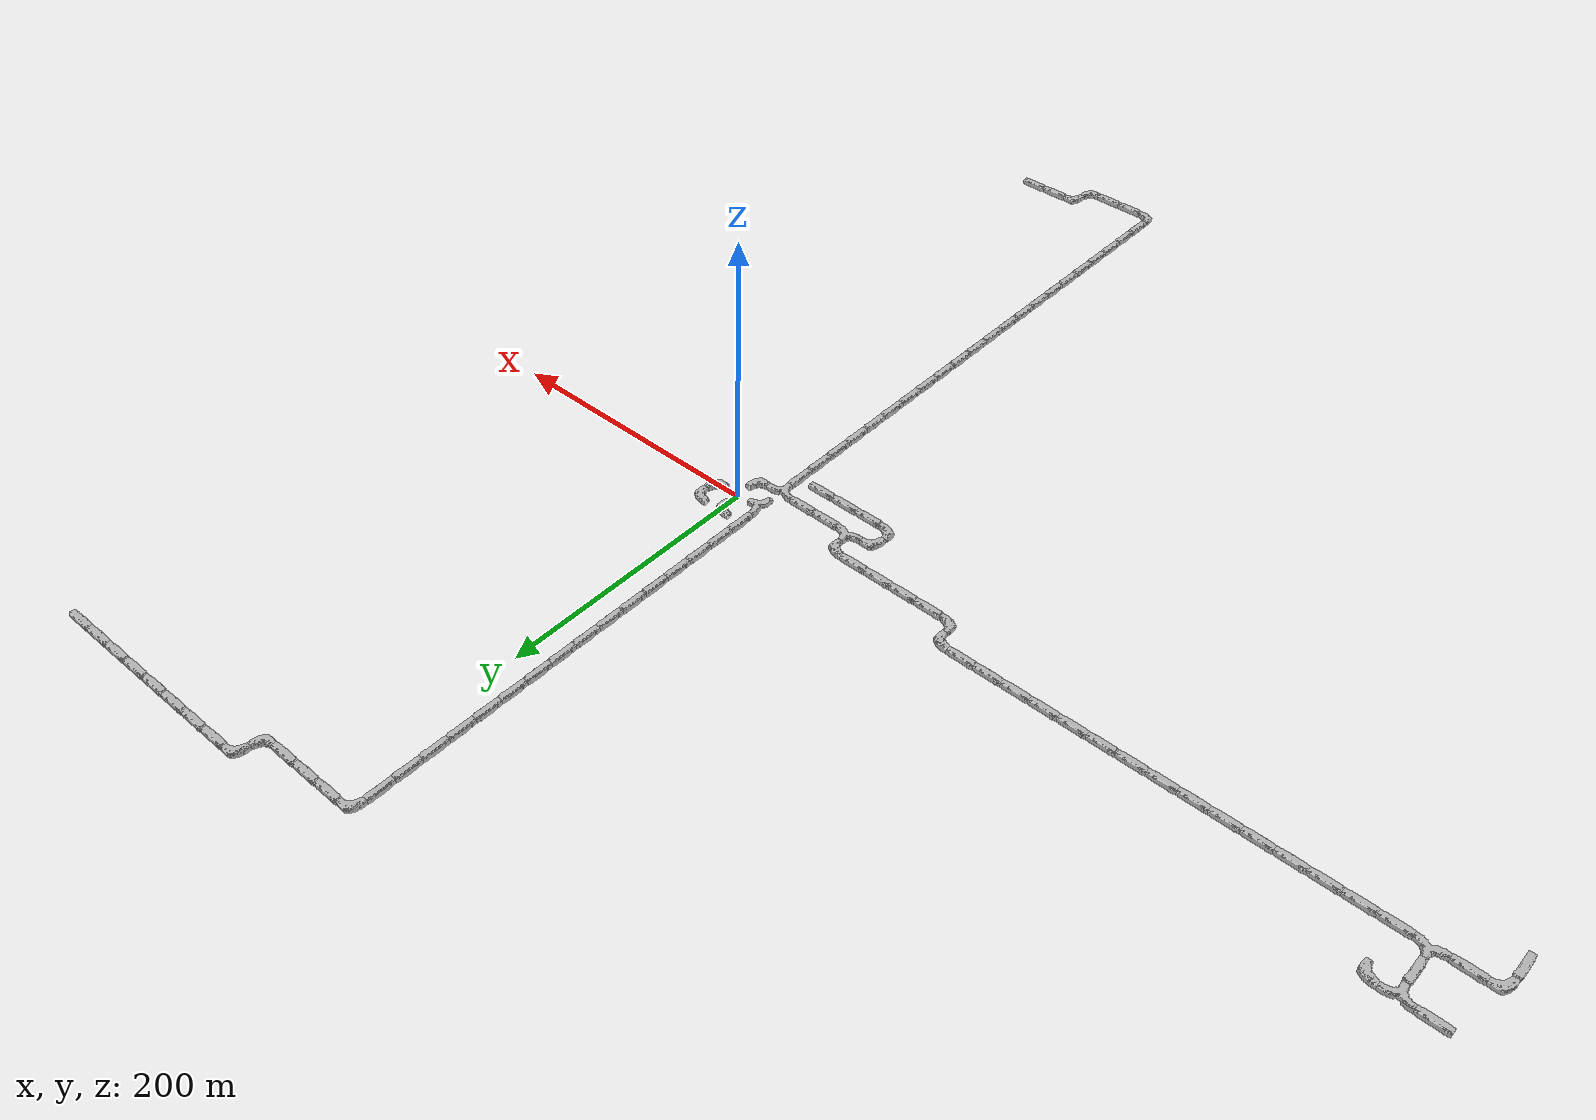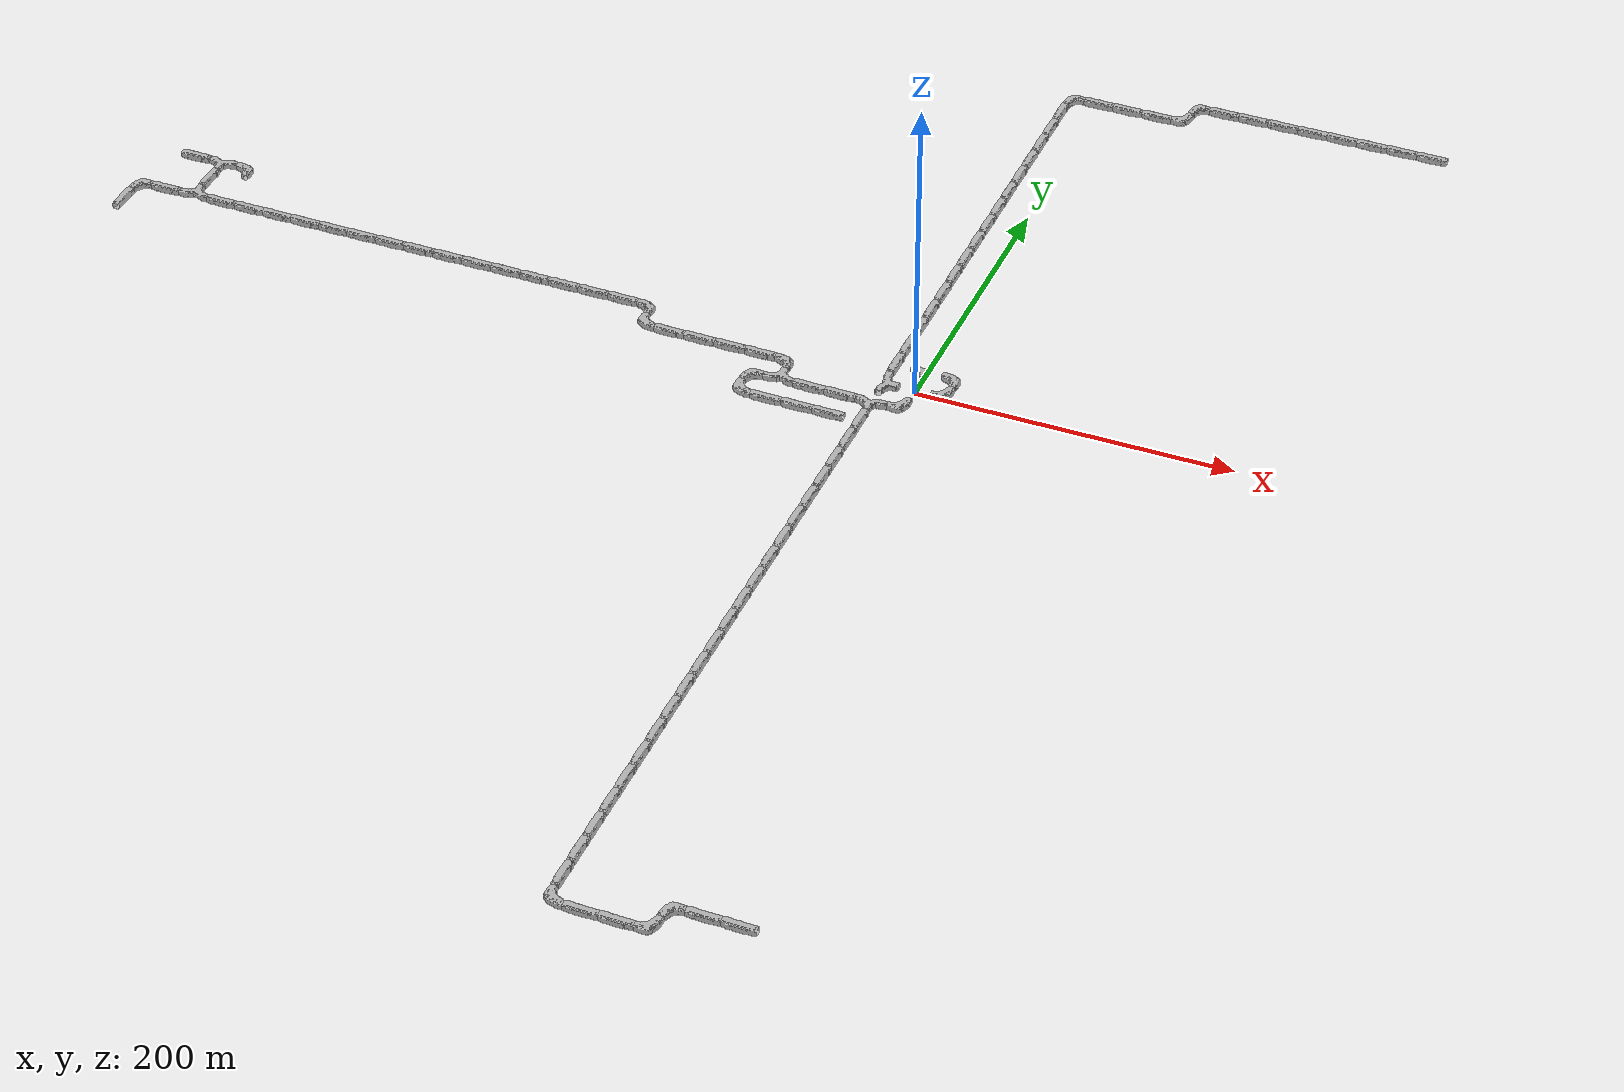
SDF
<sdf version="1.6">
 <world name="cave_2000_16">
  <include>
   <static>true</static>
   <name>cave_1_0</name>
   <pose>20 0 0 0 0 1.5707963267948966</pose>
   <uri>model://cave_L_20m</uri>
  </include>
  <include>
   <static>true</static>
   <name>cave_1_1</name>
   <pose>20 20 0 0 0 3.141592653589793</pose>
   <uri>model://cave_L_20m</uri>
  </include>
  <include>
   <static>true</static>
   <name>cave_0_-1</name>
   <pose>0 -20 0 0 0 1.5707963267948966</pose>
   <uri>model://cave_L_20m</uri>
  </include>
  <include>
   <static>true</static>
   <name>cave_-1_-1</name>
   <pose>-20 -20 0 0 0 3.141592653589793</pose>
   <uri>model://cave_3way_20m</uri>
  </include>
  <include>
   <static>true</static>
   <name>cave_-1_-2</name>
   <pose>-20 -40 0 0 0 0.0</pose>
   <uri>model://cave_straight_20m</uri>
  </include>
  <include>
   <static>true</static>
   <name>cave_-1_-3</name>
   <pose>-20 -60 0 0 0 0.0</pose>
   <uri>model://cave_straight_20m</uri>
  </include>
  <include>
   <static>true</static>
   <name>cave_-1_-4</name>
   <pose>-20 -80 0 0 0 0.0</pose>
   <uri>model://cave_straight_20m</uri>
  </include>
  <include>
   <static>true</static>
   <name>cave_-1_-5</name>
   <pose>-20 -100 0 0 0 0.0</pose>
   <uri>model://cave_straight_20m</uri>
  </include>
  <include>
   <static>true</static>
   <name>cave_-1_-6</name>
   <pose>-20 -120 0 0 0 0.0</pose>
   <uri>model://cave_straight_20m</uri>
  </include>
  <include>
   <static>true</static>
   <name>cave_-1_-7</name>
   <pose>-20 -140 0 0 0 0.0</pose>
   <uri>model://cave_straight_20m</uri>
  </include>
  <include>
   <static>true</static>
   <name>cave_-1_-8</name>
   <pose>-20 -160 0 0 0 0.0</pose>
   <uri>model://cave_straight_20m</uri>
  </include>
  <include>
   <static>true</static>
   <name>cave_-1_-9</name>
   <pose>-20 -180 0 0 0 0.0</pose>
   <uri>model://cave_straight_20m</uri>
  </include>
  <include>
   <static>true</static>
   <name>cave_-1_-10</name>
   <pose>-20 -200 0 0 0 0.0</pose>
   <uri>model://cave_straight_20m</uri>
  </include>
  <include>
   <static>true</static>
   <name>cave_-1_-11</name>
   <pose>-20 -220 0 0 0 0.0</pose>
   <uri>model://cave_straight_20m</uri>
  </include>
  <include>
   <static>true</static>
   <name>cave_-1_-12</name>
   <pose>-20 -240 0 0 0 0.0</pose>
   <uri>model://cave_straight_20m</uri>
  </include>
  <include>
   <static>true</static>
   <name>cave_-1_-13</name>
   <pose>-20 -260 0 0 0 0.0</pose>
   <uri>model://cave_straight_20m</uri>
  </include>
  <include>
   <static>true</static>
   <name>cave_-1_-14</name>
   <pose>-20 -280 0 0 0 0.0</pose>
   <uri>model://cave_straight_20m</uri>
  </include>
  <include>
   <static>true</static>
   <name>cave_-1_-15</name>
   <pose>-20 -300 0 0 0 0.0</pose>
   <uri>model://cave_straight_20m</uri>
  </include>
  <include>
   <static>true</static>
   <name>cave_-1_-16</name>
   <pose>-20 -320 0 0 0 0.0</pose>
   <uri>model://cave_straight_20m</uri>
  </include>
  <include>
   <static>true</static>
   <name>cave_-1_-17</name>
   <pose>-20 -340 0 0 0 0.0</pose>
   <uri>model://cave_straight_20m</uri>
  </include>
  <include>
   <static>true</static>
   <name>cave_-1_-18</name>
   <pose>-20 -360 0 0 0 0.0</pose>
   <uri>model://cave_straight_20m</uri>
  </include>
  <include>
   <static>true</static>
   <name>cave_-1_-19</name>
   <pose>-20 -380 0 0 0 0.0</pose>
   <uri>model://cave_straight_20m</uri>
  </include>
  <include>
   <static>true</static>
   <name>cave_-1_-20</name>
   <pose>-20 -400 0 0 0 0.0</pose>
   <uri>model://cave_straight_20m</uri>
  </include>
  <include>
   <static>true</static>
   <name>cave_-1_-21</name>
   <pose>-20 -420 0 0 0 0.0</pose>
   <uri>model://cave_straight_20m</uri>
  </include>
  <include>
   <static>true</static>
   <name>cave_-1_-22</name>
   <pose>-20 -440 0 0 0 0.0</pose>
   <uri>model://cave_straight_20m</uri>
  </include>
  <include>
   <static>true</static>
   <name>cave_-1_-23</name>
   <pose>-20 -460 0 0 0 0.0</pose>
   <uri>model://cave_straight_20m</uri>
  </include>
  <include>
   <static>true</static>
   <name>cave_-1_-24</name>
   <pose>-20 -480 0 0 0 0.0</pose>
   <uri>model://cave_L_20m</uri>
  </include>
  <include>
   <static>true</static>
   <name>cave_0_-24</name>
   <pose>0 -480 0 0 0 1.5707963267948966</pose>
   <uri>model://cave_straight_20m</uri>
  </include>
  <include>
   <static>true</static>
   <name>cave_1_-24</name>
   <pose>20 -480 0 0 0 1.5707963267948966</pose>
   <uri>model://cave_straight_20m</uri>
  </include>
  <include>
   <static>true</static>
   <name>cave_2_-24</name>
   <pose>40 -480 0 0 0 1.5707963267948966</pose>
   <uri>model://cave_L_20m</uri>
  </include>
  <include>
   <static>true</static>
   <name>cave_2_-23</name>
   <pose>40 -460 0 0 0 -1.5707963267948966</pose>
   <uri>model://cave_L_20m</uri>
  </include>
  <include>
   <static>true</static>
   <name>cave_3_-23</name>
   <pose>60 -460 0 0 0 1.5707963267948966</pose>
   <uri>model://cave_straight_20m</uri>
  </include>
  <include>
   <static>true</static>
   <name>cave_4_-23</name>
   <pose>80 -460 0 0 0 1.5707963267948966</pose>
   <uri>model://cave_straight_20m</uri>
  </include>
  <include>
   <static>true</static>
   <name>cave_-2_-1</name>
   <pose>-40 -20 0 0 0 1.5707963267948966</pose>
   <uri>model://cave_straight_20m</uri>
  </include>
  <include>
   <static>true</static>
   <name>cave_-3_-1</name>
   <pose>-60 -20 0 0 0 1.5707963267948966</pose>
   <uri>model://cave_straight_20m</uri>
  </include>
  <include>
   <static>true</static>
   <name>cave_-4_-1</name>
   <pose>-80 -20 0 0 0 0.0</pose>
   <uri>model://cave_3way_20m</uri>
  </include>
  <include>
   <static>true</static>
   <name>cave_-5_-1</name>
   <pose>-100 -20 0 0 0 -1.5707963267948966</pose>
   <uri>model://cave_L_20m</uri>
  </include>
  <include>
   <static>true</static>
   <name>cave_-5_-2</name>
   <pose>-100 -40 0 0 0 0.0</pose>
   <uri>model://cave_L_20m</uri>
  </include>
  <include>
   <static>true</static>
   <name>cave_-4_-2</name>
   <pose>-80 -40 0 0 0 1.5707963267948966</pose>
   <uri>model://cave_straight_20m</uri>
  </include>
  <include>
   <static>true</static>
   <name>cave_-3_-2</name>
   <pose>-60 -40 0 0 0 1.5707963267948966</pose>
   <uri>model://cave_straight_20m</uri>
  </include>
  <include>
   <static>true</static>
   <name>cave_-2_-2</name>
   <pose>-40 -40 0 0 0 1.5707963267948966</pose>
   <uri>model://cave_straight_20m</uri>
  </include>
  <include>
   <static>true</static>
   <name>cave_-4_0</name>
   <pose>-80 0 0 0 0 3.141592653589793</pose>
   <uri>model://cave_L_20m</uri>
  </include>
  <include>
   <static>true</static>
   <name>cave_-5_0</name>
   <pose>-100 0 0 0 0 1.5707963267948966</pose>
   <uri>model://cave_straight_20m</uri>
  </include>
  <include>
   <static>true</static>
   <name>cave_-6_0</name>
   <pose>-120 0 0 0 0 1.5707963267948966</pose>
   <uri>model://cave_straight_20m</uri>
  </include>
  <include>
   <static>true</static>
   <name>cave_-7_0</name>
   <pose>-140 0 0 0 0 1.5707963267948966</pose>
   <uri>model://cave_straight_20m</uri>
  </include>
  <include>
   <static>true</static>
   <name>cave_-8_0</name>
   <pose>-160 0 0 0 0 1.5707963267948966</pose>
   <uri>model://cave_straight_20m</uri>
  </include>
  <include>
   <static>true</static>
   <name>cave_-9_0</name>
   <pose>-180 0 0 0 0 0.0</pose>
   <uri>model://cave_L_20m</uri>
  </include>
  <include>
   <static>true</static>
   <name>cave_-9_1</name>
   <pose>-180 20 0 0 0 3.141592653589793</pose>
   <uri>model://cave_L_20m</uri>
  </include>
  <include>
   <static>true</static>
   <name>cave_-10_1</name>
   <pose>-200 20 0 0 0 1.5707963267948966</pose>
   <uri>model://cave_straight_20m</uri>
  </include>
  <include>
   <static>true</static>
   <name>cave_-11_1</name>
   <pose>-220 20 0 0 0 1.5707963267948966</pose>
   <uri>model://cave_straight_20m</uri>
  </include>
  <include>
   <static>true</static>
   <name>cave_-12_1</name>
   <pose>-240 20 0 0 0 1.5707963267948966</pose>
   <uri>model://cave_straight_20m</uri>
  </include>
  <include>
   <static>true</static>
   <name>cave_-13_1</name>
   <pose>-260 20 0 0 0 1.5707963267948966</pose>
   <uri>model://cave_straight_20m</uri>
  </include>
  <include>
   <static>true</static>
   <name>cave_-14_1</name>
   <pose>-280 20 0 0 0 1.5707963267948966</pose>
   <uri>model://cave_straight_20m</uri>
  </include>
  <include>
   <static>true</static>
   <name>cave_-15_1</name>
   <pose>-300 20 0 0 0 1.5707963267948966</pose>
   <uri>model://cave_straight_20m</uri>
  </include>
  <include>
   <static>true</static>
   <name>cave_-16_1</name>
   <pose>-320 20 0 0 0 1.5707963267948966</pose>
   <uri>model://cave_straight_20m</uri>
  </include>
  <include>
   <static>true</static>
   <name>cave_-17_1</name>
   <pose>-340 20 0 0 0 1.5707963267948966</pose>
   <uri>model://cave_straight_20m</uri>
  </include>
  <include>
   <static>true</static>
   <name>cave_-18_1</name>
   <pose>-360 20 0 0 0 1.5707963267948966</pose>
   <uri>model://cave_straight_20m</uri>
  </include>
  <include>
   <static>true</static>
   <name>cave_-19_1</name>
   <pose>-380 20 0 0 0 1.5707963267948966</pose>
   <uri>model://cave_straight_20m</uri>
  </include>
  <include>
   <static>true</static>
   <name>cave_-20_1</name>
   <pose>-400 20 0 0 0 1.5707963267948966</pose>
   <uri>model://cave_straight_20m</uri>
  </include>
  <include>
   <static>true</static>
   <name>cave_-21_1</name>
   <pose>-420 20 0 0 0 1.5707963267948966</pose>
   <uri>model://cave_straight_20m</uri>
  </include>
  <include>
   <static>true</static>
   <name>cave_-22_1</name>
   <pose>-440 20 0 0 0 1.5707963267948966</pose>
   <uri>model://cave_straight_20m</uri>
  </include>
  <include>
   <static>true</static>
   <name>cave_-23_1</name>
   <pose>-460 20 0 0 0 1.5707963267948966</pose>
   <uri>model://cave_straight_20m</uri>
  </include>
  <include>
   <static>true</static>
   <name>cave_-24_1</name>
   <pose>-480 20 0 0 0 1.5707963267948966</pose>
   <uri>model://cave_straight_20m</uri>
  </include>
  <include>
   <static>true</static>
   <name>cave_-25_1</name>
   <pose>-500 20 0 0 0 0.0</pose>
   <uri>model://cave_3way_20m</uri>
  </include>
  <include>
   <static>true</static>
   <name>cave_-26_1</name>
   <pose>-520 20 0 0 0 1.5707963267948966</pose>
   <uri>model://cave_straight_20m</uri>
  </include>
  <include>
   <static>true</static>
   <name>cave_-27_1</name>
   <pose>-540 20 0 0 0 -1.5707963267948966</pose>
   <uri>model://cave_L_20m</uri>
  </include>
  <include>
   <static>true</static>
   <name>cave_-27_0</name>
   <pose>-540 0 0 0 0 0.0</pose>
   <uri>model://cave_straight_20m</uri>
  </include>
  <include>
   <static>true</static>
   <name>cave_-25_2</name>
   <pose>-500 40 0 0 0 0.0</pose>
   <uri>model://cave_straight_20m</uri>
  </include>
  <include>
   <static>true</static>
   <name>cave_-25_3</name>
   <pose>-500 60 0 0 0 3.141592653589793</pose>
   <uri>model://cave_3way_20m</uri>
  </include>
  <include>
   <static>true</static>
   <name>cave_-24_3</name>
   <pose>-480 60 0 0 0 3.141592653589793</pose>
   <uri>model://cave_L_20m</uri>
  </include>
  <include>
   <static>true</static>
   <name>cave_-26_3</name>
   <pose>-520 60 0 0 0 1.5707963267948966</pose>
   <uri>model://cave_straight_20m</uri>
  </include>
  <include>
   <static>true</static>
   <name>cave_-1_0</name>
   <pose>-20 0 0 0 0 -1.5707963267948966</pose>
   <uri>model://cave_3way_20m</uri>
  </include>
  <include>
   <static>true</static>
   <name>cave_-1_1</name>
   <pose>-20 20 0 0 0 0.0</pose>
   <uri>model://cave_straight_20m</uri>
  </include>
  <include>
   <static>true</static>
   <name>cave_-1_2</name>
   <pose>-20 40 0 0 0 0.0</pose>
   <uri>model://cave_straight_20m</uri>
  </include>
  <include>
   <static>true</static>
   <name>cave_-1_3</name>
   <pose>-20 60 0 0 0 0.0</pose>
   <uri>model://cave_straight_20m</uri>
  </include>
  <include>
   <static>true</static>
   <name>cave_-1_4</name>
   <pose>-20 80 0 0 0 0.0</pose>
   <uri>model://cave_straight_20m</uri>
  </include>
  <include>
   <static>true</static>
   <name>cave_-1_5</name>
   <pose>-20 100 0 0 0 0.0</pose>
   <uri>model://cave_straight_20m</uri>
  </include>
  <include>
   <static>true</static>
   <name>cave_-1_6</name>
   <pose>-20 120 0 0 0 0.0</pose>
   <uri>model://cave_straight_20m</uri>
  </include>
  <include>
   <static>true</static>
   <name>cave_-1_7</name>
   <pose>-20 140 0 0 0 0.0</pose>
   <uri>model://cave_straight_20m</uri>
  </include>
  <include>
   <static>true</static>
   <name>cave_-1_8</name>
   <pose>-20 160 0 0 0 0.0</pose>
   <uri>model://cave_straight_20m</uri>
  </include>
  <include>
   <static>true</static>
   <name>cave_-1_9</name>
   <pose>-20 180 0 0 0 0.0</pose>
   <uri>model://cave_straight_20m</uri>
  </include>
  <include>
   <static>true</static>
   <name>cave_-1_10</name>
   <pose>-20 200 0 0 0 0.0</pose>
   <uri>model://cave_straight_20m</uri>
  </include>
  <include>
   <static>true</static>
   <name>cave_-1_11</name>
   <pose>-20 220 0 0 0 0.0</pose>
   <uri>model://cave_straight_20m</uri>
  </include>
  <include>
   <static>true</static>
   <name>cave_-1_12</name>
   <pose>-20 240 0 0 0 0.0</pose>
   <uri>model://cave_straight_20m</uri>
  </include>
  <include>
   <static>true</static>
   <name>cave_-1_13</name>
   <pose>-20 260 0 0 0 0.0</pose>
   <uri>model://cave_straight_20m</uri>
  </include>
  <include>
   <static>true</static>
   <name>cave_-1_14</name>
   <pose>-20 280 0 0 0 0.0</pose>
   <uri>model://cave_straight_20m</uri>
  </include>
  <include>
   <static>true</static>
   <name>cave_-1_15</name>
   <pose>-20 300 0 0 0 0.0</pose>
   <uri>model://cave_straight_20m</uri>
  </include>
  <include>
   <static>true</static>
   <name>cave_-1_16</name>
   <pose>-20 320 0 0 0 0.0</pose>
   <uri>model://cave_straight_20m</uri>
  </include>
  <include>
   <static>true</static>
   <name>cave_-1_17</name>
   <pose>-20 340 0 0 0 -1.5707963267948966</pose>
   <uri>model://cave_L_20m</uri>
  </include>
  <include>
   <static>true</static>
   <name>cave_0_17</name>
   <pose>0 340 0 0 0 1.5707963267948966</pose>
   <uri>model://cave_straight_20m</uri>
  </include>
  <include>
   <static>true</static>
   <name>cave_1_17</name>
   <pose>20 340 0 0 0 1.5707963267948966</pose>
   <uri>model://cave_straight_20m</uri>
  </include>
  <include>
   <static>true</static>
   <name>cave_2_17</name>
   <pose>40 340 0 0 0 1.5707963267948966</pose>
   <uri>model://cave_straight_20m</uri>
  </include>
  <include>
   <static>true</static>
   <name>cave_3_17</name>
   <pose>60 340 0 0 0 1.5707963267948966</pose>
   <uri>model://cave_L_20m</uri>
  </include>
  <include>
   <static>true</static>
   <name>cave_3_18</name>
   <pose>60 360 0 0 0 -1.5707963267948966</pose>
   <uri>model://cave_L_20m</uri>
  </include>
  <include>
   <static>true</static>
   <name>cave_4_18</name>
   <pose>80 360 0 0 0 1.5707963267948966</pose>
   <uri>model://cave_straight_20m</uri>
  </include>
  <include>
   <static>true</static>
   <name>cave_5_18</name>
   <pose>100 360 0 0 0 1.5707963267948966</pose>
   <uri>model://cave_straight_20m</uri>
  </include>
  <include>
   <static>true</static>
   <name>cave_6_18</name>
   <pose>120 360 0 0 0 1.5707963267948966</pose>
   <uri>model://cave_straight_20m</uri>
  </include>
  <include>
   <static>true</static>
   <name>cave_7_18</name>
   <pose>140 360 0 0 0 1.5707963267948966</pose>
   <uri>model://cave_straight_20m</uri>
  </include>
  <include>
   <static>true</static>
   <name>cave_8_18</name>
   <pose>160 360 0 0 0 1.5707963267948966</pose>
   <uri>model://cave_straight_20m</uri>
  </include>
  <include>
   <static>true</static>
   <name>cave_9_18</name>
   <pose>180 360 0 0 0 1.5707963267948966</pose>
   <uri>model://cave_straight_20m</uri>
  </include>
  <include>
   <static>true</static>
   <name>cave_10_18</name>
   <pose>200 360 0 0 0 1.5707963267948966</pose>
   <uri>model://cave_straight_20m</uri>
  </include>
  <include>
   <static>true</static>
   <name>cave_11_18</name>
   <pose>220 360 0 0 0 1.5707963267948966</pose>
   <uri>model://cave_straight_20m</uri>
  </include>
  <include>
   <static>true</static>
   <name>cave_0_1</name>
   <pose>0 20 0 0 0 3.141592653589793</pose>
   <uri>model://cave_L_20m</uri>
  </include>
 </world>
</sdf>

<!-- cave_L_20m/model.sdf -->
<sdf version="1.6">
  <model name="cave_L_20m">
    <static>true</static>
    <link name="base">
      <pose>0 0 0 0 0 0</pose>
      <collision name="base_collision">
        <pose>0 0 0 0 0 0</pose>
        <geometry>
          <mesh>
            <uri>model://cave_L_20m/meshes/cave_L_20m.dae</uri>
          </mesh>
        </geometry>
        <surface>
          <contact>
             <collide_bitmask>0xffff</collide_bitmask>
          </contact>
          <friction>
            <ode>
              <mu>100</mu>
              <mu2>50</mu2>
            </ode>
          </friction>
        </surface>
      </collision>
      <visual name="base_visual">
        <pose>0 0 0 0 0 0</pose>
        <cast_shadows>false</cast_shadows>
        <geometry>
          <mesh>
            <uri>model://cave_L_20m/meshes/cave_L_20m.dae</uri>
          </mesh>
        </geometry>
      </visual>
    </link>
  </model>
</sdf>

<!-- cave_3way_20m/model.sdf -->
<sdf version="1.6">
  <model name="cave_3way_20m">
    <static>true</static>
    <link name="base">
      <pose>0 0 0 0 0 0</pose>
      <collision name="base_collision">
        <pose>0 0 0 0 0 0</pose>
        <geometry>
          <mesh>
            <uri>model://cave_3way_20m/meshes/cave_3way_20m.dae</uri>
          </mesh>
        </geometry>
        <surface>
          <contact>
             <collide_bitmask>0xffff</collide_bitmask>
          </contact>
          <friction>
            <ode>
              <mu>100</mu>
              <mu2>50</mu2>
            </ode>
          </friction>
        </surface>
      </collision>
      <visual name="base_visual">
        <cast_shadows>false</cast_shadows>
        <pose>0 0 0 0 0 0</pose>
        <geometry>
          <mesh>
            <uri>model://cave_3way_20m/meshes/cave_3way_20m.dae</uri>
          </mesh>
        </geometry>
      </visual>
    </link>
  </model>
</sdf>

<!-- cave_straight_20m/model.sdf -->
<sdf version="1.6">
  <model name="cave_straight_20m">
    <static>true</static>
    <link name="base">
      <pose>0 0 0 0 0 0</pose>
      <collision name="base_collision">
        <pose>0 0 0 0 0 0</pose>
        <geometry>
          <mesh>
            <uri>model://cave_straight_20m/meshes/cave_straight_20m.dae</uri>
          </mesh>
        </geometry>
        <surface>
          <contact>
             <collide_bitmask>0xffff</collide_bitmask>
          </contact>
          <friction>
            <ode>
              <mu>100</mu>
              <mu2>50</mu2>
            </ode>
          </friction>
        </surface>
      </collision>
      <visual name="base_visual">
        <pose>0 0 0 0 0 0</pose>
        <cast_shadows>false</cast_shadows>
        <geometry>
          <mesh>
            <uri>model://cave_straight_20m/meshes/cave_straight_20m.dae</uri>
          </mesh>
        </geometry>
      </visual>
    </link>
  </model>
</sdf>
